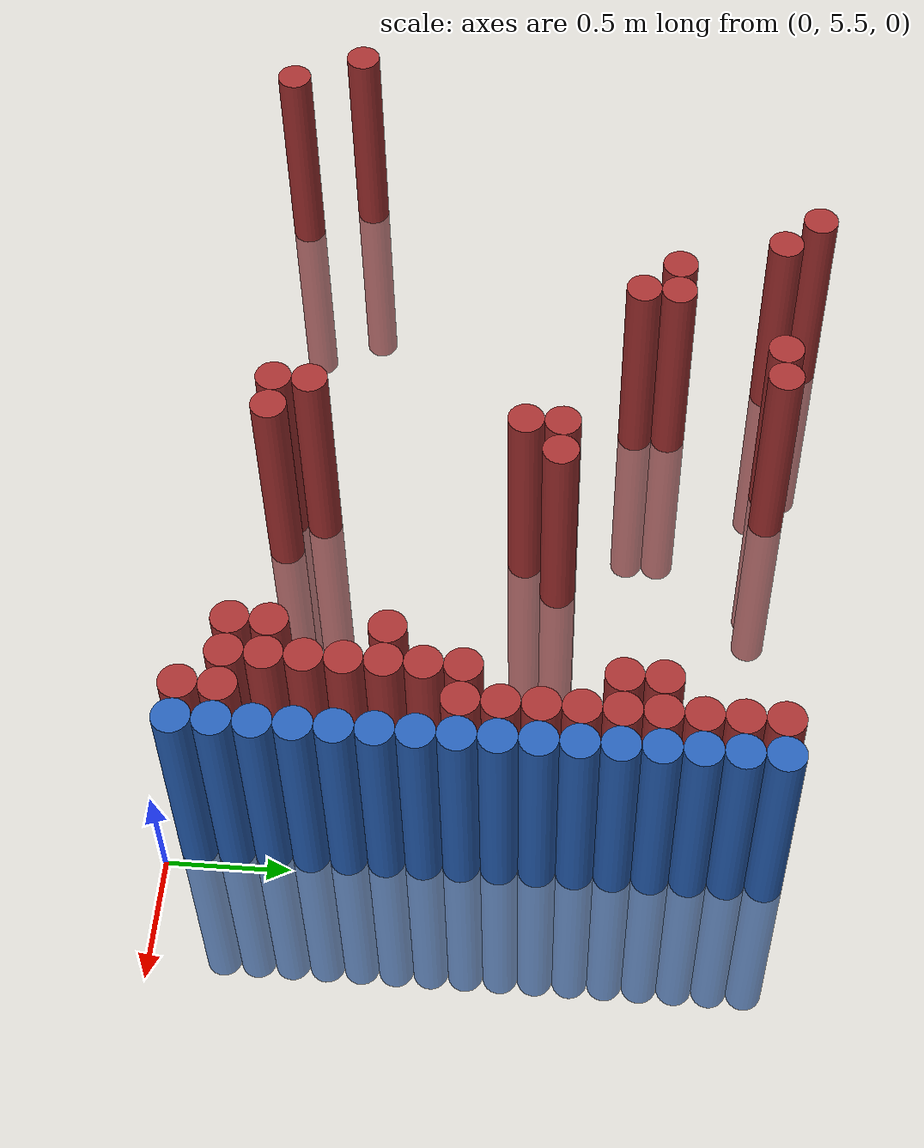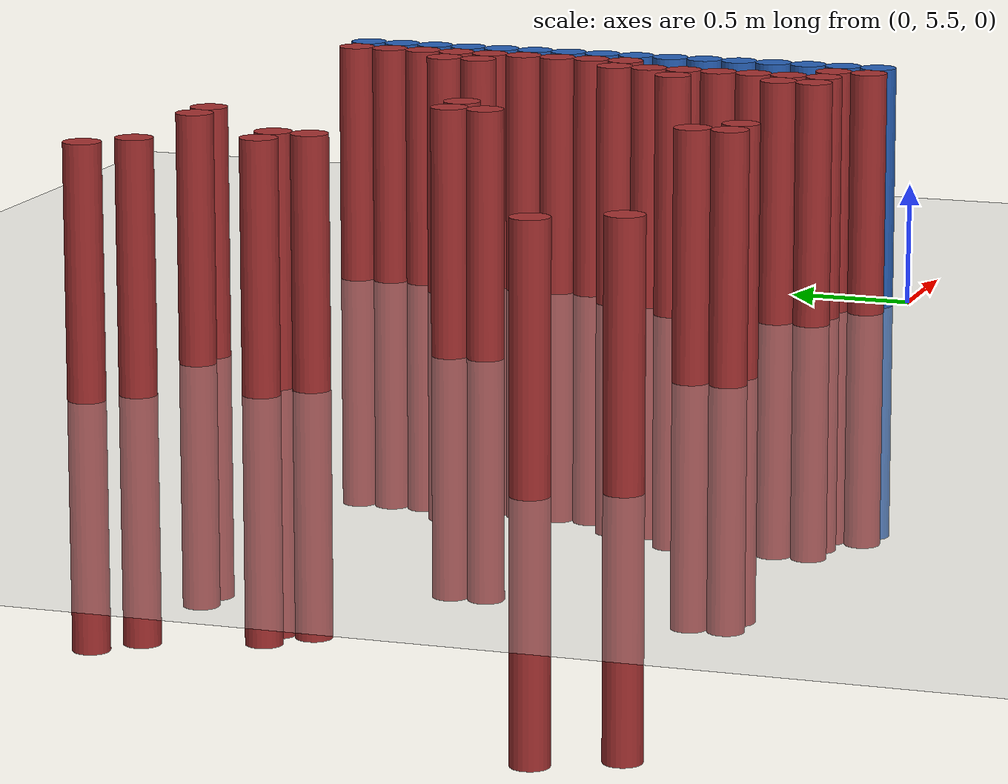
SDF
<sdf version="1.6">
 <world name="default">
  <model name="ground_plane">
   <static>1</static>
   <link name="link">
    <collision name="collision">
     <geometry><plane><normal>0 0 1</normal><size>100 100</size></plane></geometry>
     <surface><friction><ode><mu>100</mu><mu2>50</mu2></ode></friction></surface>
    </collision>
    <visual name="visual">
     <cast_shadows>0</cast_shadows>
     <geometry><plane><normal>0 0 1</normal><size>100 100</size></plane></geometry>
     <material>
      <script><uri>file://media/materials/scripts/gazebo.material</uri><name>Gazebo/Grey</name></script>
     </material>
    </visual>
   </link>
  </model>
  <model name="unit_cylinder_158">
   <static>1</static>
   <pose>-3.675000 5.925000 0.000000 0.000000 0.000000 0.000000</pose>
   <link name="link">
    <inertial>
     <mass>1</mass>
     <inertia><ixx>0.145833</ixx><ixy>0</ixy><ixz>0</ixz><iyy>0.145833</iyy><iyz>0</iyz><izz>0.125</izz></inertia>
    </inertial>
    <collision name="collision">
     <geometry><cylinder><radius>0.075000</radius><length>2</length></cylinder></geometry>
    </collision>
    <visual name="visual">
     <geometry><cylinder><radius>0.075000</radius><length>2</length></cylinder></geometry>
     <material>
      <ambient>0.648000 0.192000 0.192000 1</ambient>
      <diffuse>0.648000 0.192000 0.192000 1</diffuse>
     </material>
     <material>
      <script><name>Gazebo/Grey</name><uri>file://media/materials/scripts/gazebo.material</uri></script>
     </material>
    </visual>
   </link>
  </model>
  <model name="unit_cylinder_159">
   <static>1</static>
   <pose>-3.525000 5.625000 0.000000 0.000000 0.000000 0.000000</pose>
   <link name="link">
    <inertial>
     <mass>1</mass>
     <inertia><ixx>0.145833</ixx><ixy>0</ixy><ixz>0</ixz><iyy>0.145833</iyy><iyz>0</iyz><izz>0.125</izz></inertia>
    </inertial>
    <collision name="collision">
     <geometry><cylinder><radius>0.075000</radius><length>2</length></cylinder></geometry>
    </collision>
    <visual name="visual">
     <geometry><cylinder><radius>0.075000</radius><length>2</length></cylinder></geometry>
     <material>
      <ambient>0.648000 0.192000 0.192000 1</ambient>
      <diffuse>0.648000 0.192000 0.192000 1</diffuse>
     </material>
     <material>
      <script><name>Gazebo/Grey</name><uri>file://media/materials/scripts/gazebo.material</uri></script>
     </material>
    </visual>
   </link>
  </model>
  <model name="unit_cylinder_169">
   <static>1</static>
   <pose>-2.775000 8.025000 0.000000 0.000000 0.000000 0.000000</pose>
   <link name="link">
    <inertial>
     <mass>1</mass>
     <inertia><ixx>0.145833</ixx><ixy>0</ixy><ixz>0</ixz><iyy>0.145833</iyy><iyz>0</iyz><izz>0.125</izz></inertia>
    </inertial>
    <collision name="collision">
     <geometry><cylinder><radius>0.075000</radius><length>2</length></cylinder></geometry>
    </collision>
    <visual name="visual">
     <geometry><cylinder><radius>0.075000</radius><length>2</length></cylinder></geometry>
     <material>
      <ambient>0.648000 0.192000 0.192000 1</ambient>
      <diffuse>0.648000 0.192000 0.192000 1</diffuse>
     </material>
     <material>
      <script><name>Gazebo/Grey</name><uri>file://media/materials/scripts/gazebo.material</uri></script>
     </material>
    </visual>
   </link>
  </model>
  <model name="unit_cylinder_171">
   <static>1</static>
   <pose>-2.625000 7.875000 0.000000 0.000000 0.000000 0.000000</pose>
   <link name="link">
    <inertial>
     <mass>1</mass>
     <inertia><ixx>0.145833</ixx><ixy>0</ixy><ixz>0</ixz><iyy>0.145833</iyy><iyz>0</iyz><izz>0.125</izz></inertia>
    </inertial>
    <collision name="collision">
     <geometry><cylinder><radius>0.075000</radius><length>2</length></cylinder></geometry>
    </collision>
    <visual name="visual">
     <geometry><cylinder><radius>0.075000</radius><length>2</length></cylinder></geometry>
     <material>
      <ambient>0.648000 0.192000 0.192000 1</ambient>
      <diffuse>0.648000 0.192000 0.192000 1</diffuse>
     </material>
     <material>
      <script><name>Gazebo/Grey</name><uri>file://media/materials/scripts/gazebo.material</uri></script>
     </material>
    </visual>
   </link>
  </model>
  <model name="unit_cylinder_173">
   <static>1</static>
   <pose>-2.475000 7.425000 0.000000 0.000000 0.000000 0.000000</pose>
   <link name="link">
    <inertial>
     <mass>1</mass>
     <inertia><ixx>0.145833</ixx><ixy>0</ixy><ixz>0</ixz><iyy>0.145833</iyy><iyz>0</iyz><izz>0.125</izz></inertia>
    </inertial>
    <collision name="collision">
     <geometry><cylinder><radius>0.075000</radius><length>2</length></cylinder></geometry>
    </collision>
    <visual name="visual">
     <geometry><cylinder><radius>0.075000</radius><length>2</length></cylinder></geometry>
     <material>
      <ambient>0.648000 0.192000 0.192000 1</ambient>
      <diffuse>0.648000 0.192000 0.192000 1</diffuse>
     </material>
     <material>
      <script><name>Gazebo/Grey</name><uri>file://media/materials/scripts/gazebo.material</uri></script>
     </material>
    </visual>
   </link>
  </model>
  <model name="unit_cylinder_176">
   <static>1</static>
   <pose>-2.325000 7.275000 0.000000 0.000000 0.000000 0.000000</pose>
   <link name="link">
    <inertial>
     <mass>1</mass>
     <inertia><ixx>0.145833</ixx><ixy>0</ixy><ixz>0</ixz><iyy>0.145833</iyy><iyz>0</iyz><izz>0.125</izz></inertia>
    </inertial>
    <collision name="collision">
     <geometry><cylinder><radius>0.075000</radius><length>2</length></cylinder></geometry>
    </collision>
    <visual name="visual">
     <geometry><cylinder><radius>0.075000</radius><length>2</length></cylinder></geometry>
     <material>
      <ambient>0.648000 0.192000 0.192000 1</ambient>
      <diffuse>0.648000 0.192000 0.192000 1</diffuse>
     </material>
     <material>
      <script><name>Gazebo/Grey</name><uri>file://media/materials/scripts/gazebo.material</uri></script>
     </material>
    </visual>
   </link>
  </model>
  <model name="unit_cylinder_177">
   <static>1</static>
   <pose>-2.325000 7.425000 0.000000 0.000000 0.000000 0.000000</pose>
   <link name="link">
    <inertial>
     <mass>1</mass>
     <inertia><ixx>0.145833</ixx><ixy>0</ixy><ixz>0</ixz><iyy>0.145833</iyy><iyz>0</iyz><izz>0.125</izz></inertia>
    </inertial>
    <collision name="collision">
     <geometry><cylinder><radius>0.075000</radius><length>2</length></cylinder></geometry>
    </collision>
    <visual name="visual">
     <geometry><cylinder><radius>0.075000</radius><length>2</length></cylinder></geometry>
     <material>
      <ambient>0.648000 0.192000 0.192000 1</ambient>
      <diffuse>0.648000 0.192000 0.192000 1</diffuse>
     </material>
     <material>
      <script><name>Gazebo/Grey</name><uri>file://media/materials/scripts/gazebo.material</uri></script>
     </material>
    </visual>
   </link>
  </model>
  <model name="unit_cylinder_186">
   <static>1</static>
   <pose>-2.025000 7.875000 0.000000 0.000000 0.000000 0.000000</pose>
   <link name="link">
    <inertial>
     <mass>1</mass>
     <inertia><ixx>0.145833</ixx><ixy>0</ixy><ixz>0</ixz><iyy>0.145833</iyy><iyz>0</iyz><izz>0.125</izz></inertia>
    </inertial>
    <collision name="collision">
     <geometry><cylinder><radius>0.075000</radius><length>2</length></cylinder></geometry>
    </collision>
    <visual name="visual">
     <geometry><cylinder><radius>0.075000</radius><length>2</length></cylinder></geometry>
     <material>
      <ambient>0.648000 0.192000 0.192000 1</ambient>
      <diffuse>0.648000 0.192000 0.192000 1</diffuse>
     </material>
     <material>
      <script><name>Gazebo/Grey</name><uri>file://media/materials/scripts/gazebo.material</uri></script>
     </material>
    </visual>
   </link>
  </model>
  <model name="unit_cylinder_189">
   <static>1</static>
   <pose>-1.875000 7.875000 0.000000 0.000000 0.000000 0.000000</pose>
   <link name="link">
    <inertial>
     <mass>1</mass>
     <inertia><ixx>0.145833</ixx><ixy>0</ixy><ixz>0</ixz><iyy>0.145833</iyy><iyz>0</iyz><izz>0.125</izz></inertia>
    </inertial>
    <collision name="collision">
     <geometry><cylinder><radius>0.075000</radius><length>2</length></cylinder></geometry>
    </collision>
    <visual name="visual">
     <geometry><cylinder><radius>0.075000</radius><length>2</length></cylinder></geometry>
     <material>
      <ambient>0.648000 0.192000 0.192000 1</ambient>
      <diffuse>0.648000 0.192000 0.192000 1</diffuse>
     </material>
     <material>
      <script><name>Gazebo/Grey</name><uri>file://media/materials/scripts/gazebo.material</uri></script>
     </material>
    </visual>
   </link>
  </model>
  <model name="unit_cylinder_192">
   <static>1</static>
   <pose>-1.725000 5.775000 0.000000 0.000000 0.000000 0.000000</pose>
   <link name="link">
    <inertial>
     <mass>1</mass>
     <inertia><ixx>0.145833</ixx><ixy>0</ixy><ixz>0</ixz><iyy>0.145833</iyy><iyz>0</iyz><izz>0.125</izz></inertia>
    </inertial>
    <collision name="collision">
     <geometry><cylinder><radius>0.075000</radius><length>2</length></cylinder></geometry>
    </collision>
    <visual name="visual">
     <geometry><cylinder><radius>0.075000</radius><length>2</length></cylinder></geometry>
     <material>
      <ambient>0.648000 0.192000 0.192000 1</ambient>
      <diffuse>0.648000 0.192000 0.192000 1</diffuse>
     </material>
     <material>
      <script><name>Gazebo/Grey</name><uri>file://media/materials/scripts/gazebo.material</uri></script>
     </material>
    </visual>
   </link>
  </model>
  <model name="unit_cylinder_193">
   <static>1</static>
   <pose>-1.725000 5.925000 0.000000 0.000000 0.000000 0.000000</pose>
   <link name="link">
    <inertial>
     <mass>1</mass>
     <inertia><ixx>0.145833</ixx><ixy>0</ixy><ixz>0</ixz><iyy>0.145833</iyy><iyz>0</iyz><izz>0.125</izz></inertia>
    </inertial>
    <collision name="collision">
     <geometry><cylinder><radius>0.075000</radius><length>2</length></cylinder></geometry>
    </collision>
    <visual name="visual">
     <geometry><cylinder><radius>0.075000</radius><length>2</length></cylinder></geometry>
     <material>
      <ambient>0.648000 0.192000 0.192000 1</ambient>
      <diffuse>0.648000 0.192000 0.192000 1</diffuse>
     </material>
     <material>
      <script><name>Gazebo/Grey</name><uri>file://media/materials/scripts/gazebo.material</uri></script>
     </material>
    </visual>
   </link>
  </model>
  <model name="unit_cylinder_194">
   <static>1</static>
   <pose>-1.575000 5.775000 0.000000 0.000000 0.000000 0.000000</pose>
   <link name="link">
    <inertial>
     <mass>1</mass>
     <inertia><ixx>0.145833</ixx><ixy>0</ixy><ixz>0</ixz><iyy>0.145833</iyy><iyz>0</iyz><izz>0.125</izz></inertia>
    </inertial>
    <collision name="collision">
     <geometry><cylinder><radius>0.075000</radius><length>2</length></cylinder></geometry>
    </collision>
    <visual name="visual">
     <geometry><cylinder><radius>0.075000</radius><length>2</length></cylinder></geometry>
     <material>
      <ambient>0.648000 0.192000 0.192000 1</ambient>
      <diffuse>0.648000 0.192000 0.192000 1</diffuse>
     </material>
     <material>
      <script><name>Gazebo/Grey</name><uri>file://media/materials/scripts/gazebo.material</uri></script>
     </material>
    </visual>
   </link>
  </model>
  <model name="unit_cylinder_195">
   <static>1</static>
   <pose>-1.575000 6.825000 0.000000 0.000000 0.000000 0.000000</pose>
   <link name="link">
    <inertial>
     <mass>1</mass>
     <inertia><ixx>0.145833</ixx><ixy>0</ixy><ixz>0</ixz><iyy>0.145833</iyy><iyz>0</iyz><izz>0.125</izz></inertia>
    </inertial>
    <collision name="collision">
     <geometry><cylinder><radius>0.075000</radius><length>2</length></cylinder></geometry>
    </collision>
    <visual name="visual">
     <geometry><cylinder><radius>0.075000</radius><length>2</length></cylinder></geometry>
     <material>
      <ambient>0.648000 0.192000 0.192000 1</ambient>
      <diffuse>0.648000 0.192000 0.192000 1</diffuse>
     </material>
     <material>
      <script><name>Gazebo/Grey</name><uri>file://media/materials/scripts/gazebo.material</uri></script>
     </material>
    </visual>
   </link>
  </model>
  <model name="unit_cylinder_196">
   <static>1</static>
   <pose>-1.575000 6.975000 0.000000 0.000000 0.000000 0.000000</pose>
   <link name="link">
    <inertial>
     <mass>1</mass>
     <inertia><ixx>0.145833</ixx><ixy>0</ixy><ixz>0</ixz><iyy>0.145833</iyy><iyz>0</iyz><izz>0.125</izz></inertia>
    </inertial>
    <collision name="collision">
     <geometry><cylinder><radius>0.075000</radius><length>2</length></cylinder></geometry>
    </collision>
    <visual name="visual">
     <geometry><cylinder><radius>0.075000</radius><length>2</length></cylinder></geometry>
     <material>
      <ambient>0.648000 0.192000 0.192000 1</ambient>
      <diffuse>0.648000 0.192000 0.192000 1</diffuse>
     </material>
     <material>
      <script><name>Gazebo/Grey</name><uri>file://media/materials/scripts/gazebo.material</uri></script>
     </material>
    </visual>
   </link>
  </model>
  <model name="unit_cylinder_197">
   <static>1</static>
   <pose>-1.425000 6.975000 0.000000 0.000000 0.000000 0.000000</pose>
   <link name="link">
    <inertial>
     <mass>1</mass>
     <inertia><ixx>0.145833</ixx><ixy>0</ixy><ixz>0</ixz><iyy>0.145833</iyy><iyz>0</iyz><izz>0.125</izz></inertia>
    </inertial>
    <collision name="collision">
     <geometry><cylinder><radius>0.075000</radius><length>2</length></cylinder></geometry>
    </collision>
    <visual name="visual">
     <geometry><cylinder><radius>0.075000</radius><length>2</length></cylinder></geometry>
     <material>
      <ambient>0.648000 0.192000 0.192000 1</ambient>
      <diffuse>0.648000 0.192000 0.192000 1</diffuse>
     </material>
     <material>
      <script><name>Gazebo/Grey</name><uri>file://media/materials/scripts/gazebo.material</uri></script>
     </material>
    </visual>
   </link>
  </model>
  <model name="unit_cylinder_207">
   <static>1</static>
   <pose>-0.525000 5.775000 0.000000 0.000000 0.000000 0.000000</pose>
   <link name="link">
    <inertial>
     <mass>1</mass>
     <inertia><ixx>0.145833</ixx><ixy>0</ixy><ixz>0</ixz><iyy>0.145833</iyy><iyz>0</iyz><izz>0.125</izz></inertia>
    </inertial>
    <collision name="collision">
     <geometry><cylinder><radius>0.075000</radius><length>2</length></cylinder></geometry>
    </collision>
    <visual name="visual">
     <geometry><cylinder><radius>0.075000</radius><length>2</length></cylinder></geometry>
     <material>
      <ambient>0.648000 0.192000 0.192000 1</ambient>
      <diffuse>0.648000 0.192000 0.192000 1</diffuse>
     </material>
     <material>
      <script><name>Gazebo/Grey</name><uri>file://media/materials/scripts/gazebo.material</uri></script>
     </material>
    </visual>
   </link>
  </model>
  <model name="unit_cylinder_208">
   <static>1</static>
   <pose>-0.525000 5.925000 0.000000 0.000000 0.000000 0.000000</pose>
   <link name="link">
    <inertial>
     <mass>1</mass>
     <inertia><ixx>0.145833</ixx><ixy>0</ixy><ixz>0</ixz><iyy>0.145833</iyy><iyz>0</iyz><izz>0.125</izz></inertia>
    </inertial>
    <collision name="collision">
     <geometry><cylinder><radius>0.075000</radius><length>2</length></cylinder></geometry>
    </collision>
    <visual name="visual">
     <geometry><cylinder><radius>0.075000</radius><length>2</length></cylinder></geometry>
     <material>
      <ambient>0.648000 0.192000 0.192000 1</ambient>
      <diffuse>0.648000 0.192000 0.192000 1</diffuse>
     </material>
     <material>
      <script><name>Gazebo/Grey</name><uri>file://media/materials/scripts/gazebo.material</uri></script>
     </material>
    </visual>
   </link>
  </model>
  <model name="unit_cylinder_209">
   <static>1</static>
   <pose>-0.525000 6.375000 0.000000 0.000000 0.000000 0.000000</pose>
   <link name="link">
    <inertial>
     <mass>1</mass>
     <inertia><ixx>0.145833</ixx><ixy>0</ixy><ixz>0</ixz><iyy>0.145833</iyy><iyz>0</iyz><izz>0.125</izz></inertia>
    </inertial>
    <collision name="collision">
     <geometry><cylinder><radius>0.075000</radius><length>2</length></cylinder></geometry>
    </collision>
    <visual name="visual">
     <geometry><cylinder><radius>0.075000</radius><length>2</length></cylinder></geometry>
     <material>
      <ambient>0.648000 0.192000 0.192000 1</ambient>
      <diffuse>0.648000 0.192000 0.192000 1</diffuse>
     </material>
     <material>
      <script><name>Gazebo/Grey</name><uri>file://media/materials/scripts/gazebo.material</uri></script>
     </material>
    </visual>
   </link>
  </model>
  <model name="unit_cylinder_214">
   <static>1</static>
   <pose>-0.375000 5.775000 0.000000 0.000000 0.000000 0.000000</pose>
   <link name="link">
    <inertial>
     <mass>1</mass>
     <inertia><ixx>0.145833</ixx><ixy>0</ixy><ixz>0</ixz><iyy>0.145833</iyy><iyz>0</iyz><izz>0.125</izz></inertia>
    </inertial>
    <collision name="collision">
     <geometry><cylinder><radius>0.075000</radius><length>2</length></cylinder></geometry>
    </collision>
    <visual name="visual">
     <geometry><cylinder><radius>0.075000</radius><length>2</length></cylinder></geometry>
     <material>
      <ambient>0.648000 0.192000 0.192000 1</ambient>
      <diffuse>0.648000 0.192000 0.192000 1</diffuse>
     </material>
     <material>
      <script><name>Gazebo/Grey</name><uri>file://media/materials/scripts/gazebo.material</uri></script>
     </material>
    </visual>
   </link>
  </model>
  <model name="unit_cylinder_215">
   <static>1</static>
   <pose>-0.375000 5.925000 0.000000 0.000000 0.000000 0.000000</pose>
   <link name="link">
    <inertial>
     <mass>1</mass>
     <inertia><ixx>0.145833</ixx><ixy>0</ixy><ixz>0</ixz><iyy>0.145833</iyy><iyz>0</iyz><izz>0.125</izz></inertia>
    </inertial>
    <collision name="collision">
     <geometry><cylinder><radius>0.075000</radius><length>2</length></cylinder></geometry>
    </collision>
    <visual name="visual">
     <geometry><cylinder><radius>0.075000</radius><length>2</length></cylinder></geometry>
     <material>
      <ambient>0.648000 0.192000 0.192000 1</ambient>
      <diffuse>0.648000 0.192000 0.192000 1</diffuse>
     </material>
     <material>
      <script><name>Gazebo/Grey</name><uri>file://media/materials/scripts/gazebo.material</uri></script>
     </material>
    </visual>
   </link>
  </model>
  <model name="unit_cylinder_216">
   <static>1</static>
   <pose>-0.375000 6.075000 0.000000 0.000000 0.000000 0.000000</pose>
   <link name="link">
    <inertial>
     <mass>1</mass>
     <inertia><ixx>0.145833</ixx><ixy>0</ixy><ixz>0</ixz><iyy>0.145833</iyy><iyz>0</iyz><izz>0.125</izz></inertia>
    </inertial>
    <collision name="collision">
     <geometry><cylinder><radius>0.075000</radius><length>2</length></cylinder></geometry>
    </collision>
    <visual name="visual">
     <geometry><cylinder><radius>0.075000</radius><length>2</length></cylinder></geometry>
     <material>
      <ambient>0.648000 0.192000 0.192000 1</ambient>
      <diffuse>0.648000 0.192000 0.192000 1</diffuse>
     </material>
     <material>
      <script><name>Gazebo/Grey</name><uri>file://media/materials/scripts/gazebo.material</uri></script>
     </material>
    </visual>
   </link>
  </model>
  <model name="unit_cylinder_217">
   <static>1</static>
   <pose>-0.375000 6.225000 0.000000 0.000000 0.000000 0.000000</pose>
   <link name="link">
    <inertial>
     <mass>1</mass>
     <inertia><ixx>0.145833</ixx><ixy>0</ixy><ixz>0</ixz><iyy>0.145833</iyy><iyz>0</iyz><izz>0.125</izz></inertia>
    </inertial>
    <collision name="collision">
     <geometry><cylinder><radius>0.075000</radius><length>2</length></cylinder></geometry>
    </collision>
    <visual name="visual">
     <geometry><cylinder><radius>0.075000</radius><length>2</length></cylinder></geometry>
     <material>
      <ambient>0.648000 0.192000 0.192000 1</ambient>
      <diffuse>0.648000 0.192000 0.192000 1</diffuse>
     </material>
     <material>
      <script><name>Gazebo/Grey</name><uri>file://media/materials/scripts/gazebo.material</uri></script>
     </material>
    </visual>
   </link>
  </model>
  <model name="unit_cylinder_218">
   <static>1</static>
   <pose>-0.375000 6.375000 0.000000 0.000000 0.000000 0.000000</pose>
   <link name="link">
    <inertial>
     <mass>1</mass>
     <inertia><ixx>0.145833</ixx><ixy>0</ixy><ixz>0</ixz><iyy>0.145833</iyy><iyz>0</iyz><izz>0.125</izz></inertia>
    </inertial>
    <collision name="collision">
     <geometry><cylinder><radius>0.075000</radius><length>2</length></cylinder></geometry>
    </collision>
    <visual name="visual">
     <geometry><cylinder><radius>0.075000</radius><length>2</length></cylinder></geometry>
     <material>
      <ambient>0.648000 0.192000 0.192000 1</ambient>
      <diffuse>0.648000 0.192000 0.192000 1</diffuse>
     </material>
     <material>
      <script><name>Gazebo/Grey</name><uri>file://media/materials/scripts/gazebo.material</uri></script>
     </material>
    </visual>
   </link>
  </model>
  <model name="unit_cylinder_219">
   <static>1</static>
   <pose>-0.375000 6.525000 0.000000 0.000000 0.000000 0.000000</pose>
   <link name="link">
    <inertial>
     <mass>1</mass>
     <inertia><ixx>0.145833</ixx><ixy>0</ixy><ixz>0</ixz><iyy>0.145833</iyy><iyz>0</iyz><izz>0.125</izz></inertia>
    </inertial>
    <collision name="collision">
     <geometry><cylinder><radius>0.075000</radius><length>2</length></cylinder></geometry>
    </collision>
    <visual name="visual">
     <geometry><cylinder><radius>0.075000</radius><length>2</length></cylinder></geometry>
     <material>
      <ambient>0.648000 0.192000 0.192000 1</ambient>
      <diffuse>0.648000 0.192000 0.192000 1</diffuse>
     </material>
     <material>
      <script><name>Gazebo/Grey</name><uri>file://media/materials/scripts/gazebo.material</uri></script>
     </material>
    </visual>
   </link>
  </model>
  <model name="unit_cylinder_220">
   <static>1</static>
   <pose>-0.375000 6.675000 0.000000 0.000000 0.000000 0.000000</pose>
   <link name="link">
    <inertial>
     <mass>1</mass>
     <inertia><ixx>0.145833</ixx><ixy>0</ixy><ixz>0</ixz><iyy>0.145833</iyy><iyz>0</iyz><izz>0.125</izz></inertia>
    </inertial>
    <collision name="collision">
     <geometry><cylinder><radius>0.075000</radius><length>2</length></cylinder></geometry>
    </collision>
    <visual name="visual">
     <geometry><cylinder><radius>0.075000</radius><length>2</length></cylinder></geometry>
     <material>
      <ambient>0.648000 0.192000 0.192000 1</ambient>
      <diffuse>0.648000 0.192000 0.192000 1</diffuse>
     </material>
     <material>
      <script><name>Gazebo/Grey</name><uri>file://media/materials/scripts/gazebo.material</uri></script>
     </material>
    </visual>
   </link>
  </model>
  <model name="unit_cylinder_221">
   <static>1</static>
   <pose>-0.375000 7.275000 0.000000 0.000000 0.000000 0.000000</pose>
   <link name="link">
    <inertial>
     <mass>1</mass>
     <inertia><ixx>0.145833</ixx><ixy>0</ixy><ixz>0</ixz><iyy>0.145833</iyy><iyz>0</iyz><izz>0.125</izz></inertia>
    </inertial>
    <collision name="collision">
     <geometry><cylinder><radius>0.075000</radius><length>2</length></cylinder></geometry>
    </collision>
    <visual name="visual">
     <geometry><cylinder><radius>0.075000</radius><length>2</length></cylinder></geometry>
     <material>
      <ambient>0.648000 0.192000 0.192000 1</ambient>
      <diffuse>0.648000 0.192000 0.192000 1</diffuse>
     </material>
     <material>
      <script><name>Gazebo/Grey</name><uri>file://media/materials/scripts/gazebo.material</uri></script>
     </material>
    </visual>
   </link>
  </model>
  <model name="unit_cylinder_222">
   <static>1</static>
   <pose>-0.375000 7.425000 0.000000 0.000000 0.000000 0.000000</pose>
   <link name="link">
    <inertial>
     <mass>1</mass>
     <inertia><ixx>0.145833</ixx><ixy>0</ixy><ixz>0</ixz><iyy>0.145833</iyy><iyz>0</iyz><izz>0.125</izz></inertia>
    </inertial>
    <collision name="collision">
     <geometry><cylinder><radius>0.075000</radius><length>2</length></cylinder></geometry>
    </collision>
    <visual name="visual">
     <geometry><cylinder><radius>0.075000</radius><length>2</length></cylinder></geometry>
     <material>
      <ambient>0.648000 0.192000 0.192000 1</ambient>
      <diffuse>0.648000 0.192000 0.192000 1</diffuse>
     </material>
     <material>
      <script><name>Gazebo/Grey</name><uri>file://media/materials/scripts/gazebo.material</uri></script>
     </material>
    </visual>
   </link>
  </model>
  <model name="unit_cylinder_229">
   <static>1</static>
   <pose>-0.225000 5.625000 0.000000 0.000000 0.000000 0.000000</pose>
   <link name="link">
    <inertial>
     <mass>1</mass>
     <inertia><ixx>0.145833</ixx><ixy>0</ixy><ixz>0</ixz><iyy>0.145833</iyy><iyz>0</iyz><izz>0.125</izz></inertia>
    </inertial>
    <collision name="collision">
     <geometry><cylinder><radius>0.075000</radius><length>2</length></cylinder></geometry>
    </collision>
    <visual name="visual">
     <geometry><cylinder><radius>0.075000</radius><length>2</length></cylinder></geometry>
     <material>
      <ambient>0.648000 0.192000 0.192000 1</ambient>
      <diffuse>0.648000 0.192000 0.192000 1</diffuse>
     </material>
     <material>
      <script><name>Gazebo/Grey</name><uri>file://media/materials/scripts/gazebo.material</uri></script>
     </material>
    </visual>
   </link>
  </model>
  <model name="unit_cylinder_230">
   <static>1</static>
   <pose>-0.225000 5.775000 0.000000 0.000000 0.000000 0.000000</pose>
   <link name="link">
    <inertial>
     <mass>1</mass>
     <inertia><ixx>0.145833</ixx><ixy>0</ixy><ixz>0</ixz><iyy>0.145833</iyy><iyz>0</iyz><izz>0.125</izz></inertia>
    </inertial>
    <collision name="collision">
     <geometry><cylinder><radius>0.075000</radius><length>2</length></cylinder></geometry>
    </collision>
    <visual name="visual">
     <geometry><cylinder><radius>0.075000</radius><length>2</length></cylinder></geometry>
     <material>
      <ambient>0.648000 0.192000 0.192000 1</ambient>
      <diffuse>0.648000 0.192000 0.192000 1</diffuse>
     </material>
     <material>
      <script><name>Gazebo/Grey</name><uri>file://media/materials/scripts/gazebo.material</uri></script>
     </material>
    </visual>
   </link>
  </model>
  <model name="unit_cylinder_231">
   <static>1</static>
   <pose>-0.225000 6.675000 0.000000 0.000000 0.000000 0.000000</pose>
   <link name="link">
    <inertial>
     <mass>1</mass>
     <inertia><ixx>0.145833</ixx><ixy>0</ixy><ixz>0</ixz><iyy>0.145833</iyy><iyz>0</iyz><izz>0.125</izz></inertia>
    </inertial>
    <collision name="collision">
     <geometry><cylinder><radius>0.075000</radius><length>2</length></cylinder></geometry>
    </collision>
    <visual name="visual">
     <geometry><cylinder><radius>0.075000</radius><length>2</length></cylinder></geometry>
     <material>
      <ambient>0.648000 0.192000 0.192000 1</ambient>
      <diffuse>0.648000 0.192000 0.192000 1</diffuse>
     </material>
     <material>
      <script><name>Gazebo/Grey</name><uri>file://media/materials/scripts/gazebo.material</uri></script>
     </material>
    </visual>
   </link>
  </model>
  <model name="unit_cylinder_232">
   <static>1</static>
   <pose>-0.225000 6.825000 0.000000 0.000000 0.000000 0.000000</pose>
   <link name="link">
    <inertial>
     <mass>1</mass>
     <inertia><ixx>0.145833</ixx><ixy>0</ixy><ixz>0</ixz><iyy>0.145833</iyy><iyz>0</iyz><izz>0.125</izz></inertia>
    </inertial>
    <collision name="collision">
     <geometry><cylinder><radius>0.075000</radius><length>2</length></cylinder></geometry>
    </collision>
    <visual name="visual">
     <geometry><cylinder><radius>0.075000</radius><length>2</length></cylinder></geometry>
     <material>
      <ambient>0.648000 0.192000 0.192000 1</ambient>
      <diffuse>0.648000 0.192000 0.192000 1</diffuse>
     </material>
     <material>
      <script><name>Gazebo/Grey</name><uri>file://media/materials/scripts/gazebo.material</uri></script>
     </material>
    </visual>
   </link>
  </model>
  <model name="unit_cylinder_233">
   <static>1</static>
   <pose>-0.225000 6.975000 0.000000 0.000000 0.000000 0.000000</pose>
   <link name="link">
    <inertial>
     <mass>1</mass>
     <inertia><ixx>0.145833</ixx><ixy>0</ixy><ixz>0</ixz><iyy>0.145833</iyy><iyz>0</iyz><izz>0.125</izz></inertia>
    </inertial>
    <collision name="collision">
     <geometry><cylinder><radius>0.075000</radius><length>2</length></cylinder></geometry>
    </collision>
    <visual name="visual">
     <geometry><cylinder><radius>0.075000</radius><length>2</length></cylinder></geometry>
     <material>
      <ambient>0.648000 0.192000 0.192000 1</ambient>
      <diffuse>0.648000 0.192000 0.192000 1</diffuse>
     </material>
     <material>
      <script><name>Gazebo/Grey</name><uri>file://media/materials/scripts/gazebo.material</uri></script>
     </material>
    </visual>
   </link>
  </model>
  <model name="unit_cylinder_234">
   <static>1</static>
   <pose>-0.225000 7.125000 0.000000 0.000000 0.000000 0.000000</pose>
   <link name="link">
    <inertial>
     <mass>1</mass>
     <inertia><ixx>0.145833</ixx><ixy>0</ixy><ixz>0</ixz><iyy>0.145833</iyy><iyz>0</iyz><izz>0.125</izz></inertia>
    </inertial>
    <collision name="collision">
     <geometry><cylinder><radius>0.075000</radius><length>2</length></cylinder></geometry>
    </collision>
    <visual name="visual">
     <geometry><cylinder><radius>0.075000</radius><length>2</length></cylinder></geometry>
     <material>
      <ambient>0.648000 0.192000 0.192000 1</ambient>
      <diffuse>0.648000 0.192000 0.192000 1</diffuse>
     </material>
     <material>
      <script><name>Gazebo/Grey</name><uri>file://media/materials/scripts/gazebo.material</uri></script>
     </material>
    </visual>
   </link>
  </model>
  <model name="unit_cylinder_235">
   <static>1</static>
   <pose>-0.225000 7.275000 0.000000 0.000000 0.000000 0.000000</pose>
   <link name="link">
    <inertial>
     <mass>1</mass>
     <inertia><ixx>0.145833</ixx><ixy>0</ixy><ixz>0</ixz><iyy>0.145833</iyy><iyz>0</iyz><izz>0.125</izz></inertia>
    </inertial>
    <collision name="collision">
     <geometry><cylinder><radius>0.075000</radius><length>2</length></cylinder></geometry>
    </collision>
    <visual name="visual">
     <geometry><cylinder><radius>0.075000</radius><length>2</length></cylinder></geometry>
     <material>
      <ambient>0.648000 0.192000 0.192000 1</ambient>
      <diffuse>0.648000 0.192000 0.192000 1</diffuse>
     </material>
     <material>
      <script><name>Gazebo/Grey</name><uri>file://media/materials/scripts/gazebo.material</uri></script>
     </material>
    </visual>
   </link>
  </model>
  <model name="unit_cylinder_236">
   <static>1</static>
   <pose>-0.225000 7.425000 0.000000 0.000000 0.000000 0.000000</pose>
   <link name="link">
    <inertial>
     <mass>1</mass>
     <inertia><ixx>0.145833</ixx><ixy>0</ixy><ixz>0</ixz><iyy>0.145833</iyy><iyz>0</iyz><izz>0.125</izz></inertia>
    </inertial>
    <collision name="collision">
     <geometry><cylinder><radius>0.075000</radius><length>2</length></cylinder></geometry>
    </collision>
    <visual name="visual">
     <geometry><cylinder><radius>0.075000</radius><length>2</length></cylinder></geometry>
     <material>
      <ambient>0.648000 0.192000 0.192000 1</ambient>
      <diffuse>0.648000 0.192000 0.192000 1</diffuse>
     </material>
     <material>
      <script><name>Gazebo/Grey</name><uri>file://media/materials/scripts/gazebo.material</uri></script>
     </material>
    </visual>
   </link>
  </model>
  <model name="unit_cylinder_237">
   <static>1</static>
   <pose>-0.225000 7.575000 0.000000 0.000000 0.000000 0.000000</pose>
   <link name="link">
    <inertial>
     <mass>1</mass>
     <inertia><ixx>0.145833</ixx><ixy>0</ixy><ixz>0</ixz><iyy>0.145833</iyy><iyz>0</iyz><izz>0.125</izz></inertia>
    </inertial>
    <collision name="collision">
     <geometry><cylinder><radius>0.075000</radius><length>2</length></cylinder></geometry>
    </collision>
    <visual name="visual">
     <geometry><cylinder><radius>0.075000</radius><length>2</length></cylinder></geometry>
     <material>
      <ambient>0.648000 0.192000 0.192000 1</ambient>
      <diffuse>0.648000 0.192000 0.192000 1</diffuse>
     </material>
     <material>
      <script><name>Gazebo/Grey</name><uri>file://media/materials/scripts/gazebo.material</uri></script>
     </material>
    </visual>
   </link>
  </model>
  <model name="unit_cylinder_238">
   <static>1</static>
   <pose>-0.225000 7.725000 0.000000 0.000000 0.000000 0.000000</pose>
   <link name="link">
    <inertial>
     <mass>1</mass>
     <inertia><ixx>0.145833</ixx><ixy>0</ixy><ixz>0</ixz><iyy>0.145833</iyy><iyz>0</iyz><izz>0.125</izz></inertia>
    </inertial>
    <collision name="collision">
     <geometry><cylinder><radius>0.075000</radius><length>2</length></cylinder></geometry>
    </collision>
    <visual name="visual">
     <geometry><cylinder><radius>0.075000</radius><length>2</length></cylinder></geometry>
     <material>
      <ambient>0.648000 0.192000 0.192000 1</ambient>
      <diffuse>0.648000 0.192000 0.192000 1</diffuse>
     </material>
     <material>
      <script><name>Gazebo/Grey</name><uri>file://media/materials/scripts/gazebo.material</uri></script>
     </material>
    </visual>
   </link>
  </model>
  <model name="unit_cylinder_239">
   <static>1</static>
   <pose>-0.225000 7.875000 0.000000 0.000000 0.000000 0.000000</pose>
   <link name="link">
    <inertial>
     <mass>1</mass>
     <inertia><ixx>0.145833</ixx><ixy>0</ixy><ixz>0</ixz><iyy>0.145833</iyy><iyz>0</iyz><izz>0.125</izz></inertia>
    </inertial>
    <collision name="collision">
     <geometry><cylinder><radius>0.075000</radius><length>2</length></cylinder></geometry>
    </collision>
    <visual name="visual">
     <geometry><cylinder><radius>0.075000</radius><length>2</length></cylinder></geometry>
     <material>
      <ambient>0.648000 0.192000 0.192000 1</ambient>
      <diffuse>0.648000 0.192000 0.192000 1</diffuse>
     </material>
     <material>
      <script><name>Gazebo/Grey</name><uri>file://media/materials/scripts/gazebo.material</uri></script>
     </material>
    </visual>
   </link>
  </model>
  <model name="unit_cylinder_246">
   <static>1</static>
   <pose>-0.075000 5.625000 0.000000 0.000000 0.000000 0.000000</pose>
   <link name="link">
    <inertial>
     <mass>1</mass>
     <inertia><ixx>0.145833</ixx><ixy>0</ixy><ixz>0</ixz><iyy>0.145833</iyy><iyz>0</iyz><izz>0.125</izz></inertia>
    </inertial>
    <collision name="collision">
     <geometry><cylinder><radius>0.075000</radius><length>2</length></cylinder></geometry>
    </collision>
    <visual name="visual">
     <geometry><cylinder><radius>0.075000</radius><length>2</length></cylinder></geometry>
     <material>
      <ambient>0.152000 0.379000 0.720000 1</ambient>
      <diffuse>0.152000 0.379000 0.720000 1</diffuse>
     </material>
     <material>
      <script><name>Gazebo/Grey</name><uri>file://media/materials/scripts/gazebo.material</uri></script>
     </material>
    </visual>
   </link>
  </model>
  <model name="unit_cylinder_247">
   <static>1</static>
   <pose>-0.075000 5.775000 0.000000 0.000000 0.000000 0.000000</pose>
   <link name="link">
    <inertial>
     <mass>1</mass>
     <inertia><ixx>0.145833</ixx><ixy>0</ixy><ixz>0</ixz><iyy>0.145833</iyy><iyz>0</iyz><izz>0.125</izz></inertia>
    </inertial>
    <collision name="collision">
     <geometry><cylinder><radius>0.075000</radius><length>2</length></cylinder></geometry>
    </collision>
    <visual name="visual">
     <geometry><cylinder><radius>0.075000</radius><length>2</length></cylinder></geometry>
     <material>
      <ambient>0.152000 0.379000 0.720000 1</ambient>
      <diffuse>0.152000 0.379000 0.720000 1</diffuse>
     </material>
     <material>
      <script><name>Gazebo/Grey</name><uri>file://media/materials/scripts/gazebo.material</uri></script>
     </material>
    </visual>
   </link>
  </model>
  <model name="unit_cylinder_248">
   <static>1</static>
   <pose>-0.075000 5.925000 0.000000 0.000000 0.000000 0.000000</pose>
   <link name="link">
    <inertial>
     <mass>1</mass>
     <inertia><ixx>0.145833</ixx><ixy>0</ixy><ixz>0</ixz><iyy>0.145833</iyy><iyz>0</iyz><izz>0.125</izz></inertia>
    </inertial>
    <collision name="collision">
     <geometry><cylinder><radius>0.075000</radius><length>2</length></cylinder></geometry>
    </collision>
    <visual name="visual">
     <geometry><cylinder><radius>0.075000</radius><length>2</length></cylinder></geometry>
     <material>
      <ambient>0.152000 0.379000 0.720000 1</ambient>
      <diffuse>0.152000 0.379000 0.720000 1</diffuse>
     </material>
     <material>
      <script><name>Gazebo/Grey</name><uri>file://media/materials/scripts/gazebo.material</uri></script>
     </material>
    </visual>
   </link>
  </model>
  <model name="unit_cylinder_249">
   <static>1</static>
   <pose>-0.075000 6.075000 0.000000 0.000000 0.000000 0.000000</pose>
   <link name="link">
    <inertial>
     <mass>1</mass>
     <inertia><ixx>0.145833</ixx><ixy>0</ixy><ixz>0</ixz><iyy>0.145833</iyy><iyz>0</iyz><izz>0.125</izz></inertia>
    </inertial>
    <collision name="collision">
     <geometry><cylinder><radius>0.075000</radius><length>2</length></cylinder></geometry>
    </collision>
    <visual name="visual">
     <geometry><cylinder><radius>0.075000</radius><length>2</length></cylinder></geometry>
     <material>
      <ambient>0.152000 0.379000 0.720000 1</ambient>
      <diffuse>0.152000 0.379000 0.720000 1</diffuse>
     </material>
     <material>
      <script><name>Gazebo/Grey</name><uri>file://media/materials/scripts/gazebo.material</uri></script>
     </material>
    </visual>
   </link>
  </model>
  <model name="unit_cylinder_250">
   <static>1</static>
   <pose>-0.075000 6.225000 0.000000 0.000000 0.000000 0.000000</pose>
   <link name="link">
    <inertial>
     <mass>1</mass>
     <inertia><ixx>0.145833</ixx><ixy>0</ixy><ixz>0</ixz><iyy>0.145833</iyy><iyz>0</iyz><izz>0.125</izz></inertia>
    </inertial>
    <collision name="collision">
     <geometry><cylinder><radius>0.075000</radius><length>2</length></cylinder></geometry>
    </collision>
    <visual name="visual">
     <geometry><cylinder><radius>0.075000</radius><length>2</length></cylinder></geometry>
     <material>
      <ambient>0.152000 0.379000 0.720000 1</ambient>
      <diffuse>0.152000 0.379000 0.720000 1</diffuse>
     </material>
     <material>
      <script><name>Gazebo/Grey</name><uri>file://media/materials/scripts/gazebo.material</uri></script>
     </material>
    </visual>
   </link>
  </model>
  <model name="unit_cylinder_251">
   <static>1</static>
   <pose>-0.075000 6.375000 0.000000 0.000000 0.000000 0.000000</pose>
   <link name="link">
    <inertial>
     <mass>1</mass>
     <inertia><ixx>0.145833</ixx><ixy>0</ixy><ixz>0</ixz><iyy>0.145833</iyy><iyz>0</iyz><izz>0.125</izz></inertia>
    </inertial>
    <collision name="collision">
     <geometry><cylinder><radius>0.075000</radius><length>2</length></cylinder></geometry>
    </collision>
    <visual name="visual">
     <geometry><cylinder><radius>0.075000</radius><length>2</length></cylinder></geometry>
     <material>
      <ambient>0.152000 0.379000 0.720000 1</ambient>
      <diffuse>0.152000 0.379000 0.720000 1</diffuse>
     </material>
     <material>
      <script><name>Gazebo/Grey</name><uri>file://media/materials/scripts/gazebo.material</uri></script>
     </material>
    </visual>
   </link>
  </model>
  <model name="unit_cylinder_252">
   <static>1</static>
   <pose>-0.075000 6.525000 0.000000 0.000000 0.000000 0.000000</pose>
   <link name="link">
    <inertial>
     <mass>1</mass>
     <inertia><ixx>0.145833</ixx><ixy>0</ixy><ixz>0</ixz><iyy>0.145833</iyy><iyz>0</iyz><izz>0.125</izz></inertia>
    </inertial>
    <collision name="collision">
     <geometry><cylinder><radius>0.075000</radius><length>2</length></cylinder></geometry>
    </collision>
    <visual name="visual">
     <geometry><cylinder><radius>0.075000</radius><length>2</length></cylinder></geometry>
     <material>
      <ambient>0.152000 0.379000 0.720000 1</ambient>
      <diffuse>0.152000 0.379000 0.720000 1</diffuse>
     </material>
     <material>
      <script><name>Gazebo/Grey</name><uri>file://media/materials/scripts/gazebo.material</uri></script>
     </material>
    </visual>
   </link>
  </model>
  <model name="unit_cylinder_253">
   <static>1</static>
   <pose>-0.075000 6.675000 0.000000 0.000000 0.000000 0.000000</pose>
   <link name="link">
    <inertial>
     <mass>1</mass>
     <inertia><ixx>0.145833</ixx><ixy>0</ixy><ixz>0</ixz><iyy>0.145833</iyy><iyz>0</iyz><izz>0.125</izz></inertia>
    </inertial>
    <collision name="collision">
     <geometry><cylinder><radius>0.075000</radius><length>2</length></cylinder></geometry>
    </collision>
    <visual name="visual">
     <geometry><cylinder><radius>0.075000</radius><length>2</length></cylinder></geometry>
     <material>
      <ambient>0.152000 0.379000 0.720000 1</ambient>
      <diffuse>0.152000 0.379000 0.720000 1</diffuse>
     </material>
     <material>
      <script><name>Gazebo/Grey</name><uri>file://media/materials/scripts/gazebo.material</uri></script>
     </material>
    </visual>
   </link>
  </model>
  <model name="unit_cylinder_254">
   <static>1</static>
   <pose>-0.075000 6.825000 0.000000 0.000000 0.000000 0.000000</pose>
   <link name="link">
    <inertial>
     <mass>1</mass>
     <inertia><ixx>0.145833</ixx><ixy>0</ixy><ixz>0</ixz><iyy>0.145833</iyy><iyz>0</iyz><izz>0.125</izz></inertia>
    </inertial>
    <collision name="collision">
     <geometry><cylinder><radius>0.075000</radius><length>2</length></cylinder></geometry>
    </collision>
    <visual name="visual">
     <geometry><cylinder><radius>0.075000</radius><length>2</length></cylinder></geometry>
     <material>
      <ambient>0.152000 0.379000 0.720000 1</ambient>
      <diffuse>0.152000 0.379000 0.720000 1</diffuse>
     </material>
     <material>
      <script><name>Gazebo/Grey</name><uri>file://media/materials/scripts/gazebo.material</uri></script>
     </material>
    </visual>
   </link>
  </model>
  <model name="unit_cylinder_255">
   <static>1</static>
   <pose>-0.075000 6.975000 0.000000 0.000000 0.000000 0.000000</pose>
   <link name="link">
    <inertial>
     <mass>1</mass>
     <inertia><ixx>0.145833</ixx><ixy>0</ixy><ixz>0</ixz><iyy>0.145833</iyy><iyz>0</iyz><izz>0.125</izz></inertia>
    </inertial>
    <collision name="collision">
     <geometry><cylinder><radius>0.075000</radius><length>2</length></cylinder></geometry>
    </collision>
    <visual name="visual">
     <geometry><cylinder><radius>0.075000</radius><length>2</length></cylinder></geometry>
     <material>
      <ambient>0.152000 0.379000 0.720000 1</ambient>
      <diffuse>0.152000 0.379000 0.720000 1</diffuse>
     </material>
     <material>
      <script><name>Gazebo/Grey</name><uri>file://media/materials/scripts/gazebo.material</uri></script>
     </material>
    </visual>
   </link>
  </model>
  <model name="unit_cylinder_256">
   <static>1</static>
   <pose>-0.075000 7.125000 0.000000 0.000000 0.000000 0.000000</pose>
   <link name="link">
    <inertial>
     <mass>1</mass>
     <inertia><ixx>0.145833</ixx><ixy>0</ixy><ixz>0</ixz><iyy>0.145833</iyy><iyz>0</iyz><izz>0.125</izz></inertia>
    </inertial>
    <collision name="collision">
     <geometry><cylinder><radius>0.075000</radius><length>2</length></cylinder></geometry>
    </collision>
    <visual name="visual">
     <geometry><cylinder><radius>0.075000</radius><length>2</length></cylinder></geometry>
     <material>
      <ambient>0.152000 0.379000 0.720000 1</ambient>
      <diffuse>0.152000 0.379000 0.720000 1</diffuse>
     </material>
     <material>
      <script><name>Gazebo/Grey</name><uri>file://media/materials/scripts/gazebo.material</uri></script>
     </material>
    </visual>
   </link>
  </model>
  <model name="unit_cylinder_257">
   <static>1</static>
   <pose>-0.075000 7.275000 0.000000 0.000000 0.000000 0.000000</pose>
   <link name="link">
    <inertial>
     <mass>1</mass>
     <inertia><ixx>0.145833</ixx><ixy>0</ixy><ixz>0</ixz><iyy>0.145833</iyy><iyz>0</iyz><izz>0.125</izz></inertia>
    </inertial>
    <collision name="collision">
     <geometry><cylinder><radius>0.075000</radius><length>2</length></cylinder></geometry>
    </collision>
    <visual name="visual">
     <geometry><cylinder><radius>0.075000</radius><length>2</length></cylinder></geometry>
     <material>
      <ambient>0.152000 0.379000 0.720000 1</ambient>
      <diffuse>0.152000 0.379000 0.720000 1</diffuse>
     </material>
     <material>
      <script><name>Gazebo/Grey</name><uri>file://media/materials/scripts/gazebo.material</uri></script>
     </material>
    </visual>
   </link>
  </model>
  <model name="unit_cylinder_258">
   <static>1</static>
   <pose>-0.075000 7.425000 0.000000 0.000000 0.000000 0.000000</pose>
   <link name="link">
    <inertial>
     <mass>1</mass>
     <inertia><ixx>0.145833</ixx><ixy>0</ixy><ixz>0</ixz><iyy>0.145833</iyy><iyz>0</iyz><izz>0.125</izz></inertia>
    </inertial>
    <collision name="collision">
     <geometry><cylinder><radius>0.075000</radius><length>2</length></cylinder></geometry>
    </collision>
    <visual name="visual">
     <geometry><cylinder><radius>0.075000</radius><length>2</length></cylinder></geometry>
     <material>
      <ambient>0.152000 0.379000 0.720000 1</ambient>
      <diffuse>0.152000 0.379000 0.720000 1</diffuse>
     </material>
     <material>
      <script><name>Gazebo/Grey</name><uri>file://media/materials/scripts/gazebo.material</uri></script>
     </material>
    </visual>
   </link>
  </model>
  <model name="unit_cylinder_259">
   <static>1</static>
   <pose>-0.075000 7.575000 0.000000 0.000000 0.000000 0.000000</pose>
   <link name="link">
    <inertial>
     <mass>1</mass>
     <inertia><ixx>0.145833</ixx><ixy>0</ixy><ixz>0</ixz><iyy>0.145833</iyy><iyz>0</iyz><izz>0.125</izz></inertia>
    </inertial>
    <collision name="collision">
     <geometry><cylinder><radius>0.075000</radius><length>2</length></cylinder></geometry>
    </collision>
    <visual name="visual">
     <geometry><cylinder><radius>0.075000</radius><length>2</length></cylinder></geometry>
     <material>
      <ambient>0.152000 0.379000 0.720000 1</ambient>
      <diffuse>0.152000 0.379000 0.720000 1</diffuse>
     </material>
     <material>
      <script><name>Gazebo/Grey</name><uri>file://media/materials/scripts/gazebo.material</uri></script>
     </material>
    </visual>
   </link>
  </model>
  <model name="unit_cylinder_260">
   <static>1</static>
   <pose>-0.075000 7.725000 0.000000 0.000000 0.000000 0.000000</pose>
   <link name="link">
    <inertial>
     <mass>1</mass>
     <inertia><ixx>0.145833</ixx><ixy>0</ixy><ixz>0</ixz><iyy>0.145833</iyy><iyz>0</iyz><izz>0.125</izz></inertia>
    </inertial>
    <collision name="collision">
     <geometry><cylinder><radius>0.075000</radius><length>2</length></cylinder></geometry>
    </collision>
    <visual name="visual">
     <geometry><cylinder><radius>0.075000</radius><length>2</length></cylinder></geometry>
     <material>
      <ambient>0.152000 0.379000 0.720000 1</ambient>
      <diffuse>0.152000 0.379000 0.720000 1</diffuse>
     </material>
     <material>
      <script><name>Gazebo/Grey</name><uri>file://media/materials/scripts/gazebo.material</uri></script>
     </material>
    </visual>
   </link>
  </model>
  <model name="unit_cylinder_261">
   <static>1</static>
   <pose>-0.075000 7.875000 0.000000 0.000000 0.000000 0.000000</pose>
   <link name="link">
    <inertial>
     <mass>1</mass>
     <inertia><ixx>0.145833</ixx><ixy>0</ixy><ixz>0</ixz><iyy>0.145833</iyy><iyz>0</iyz><izz>0.125</izz></inertia>
    </inertial>
    <collision name="collision">
     <geometry><cylinder><radius>0.075000</radius><length>2</length></cylinder></geometry>
    </collision>
    <visual name="visual">
     <geometry><cylinder><radius>0.075000</radius><length>2</length></cylinder></geometry>
     <material>
      <ambient>0.152000 0.379000 0.720000 1</ambient>
      <diffuse>0.152000 0.379000 0.720000 1</diffuse>
     </material>
     <material>
      <script><name>Gazebo/Grey</name><uri>file://media/materials/scripts/gazebo.material</uri></script>
     </material>
    </visual>
   </link>
  </model>
 </world>
</sdf>
